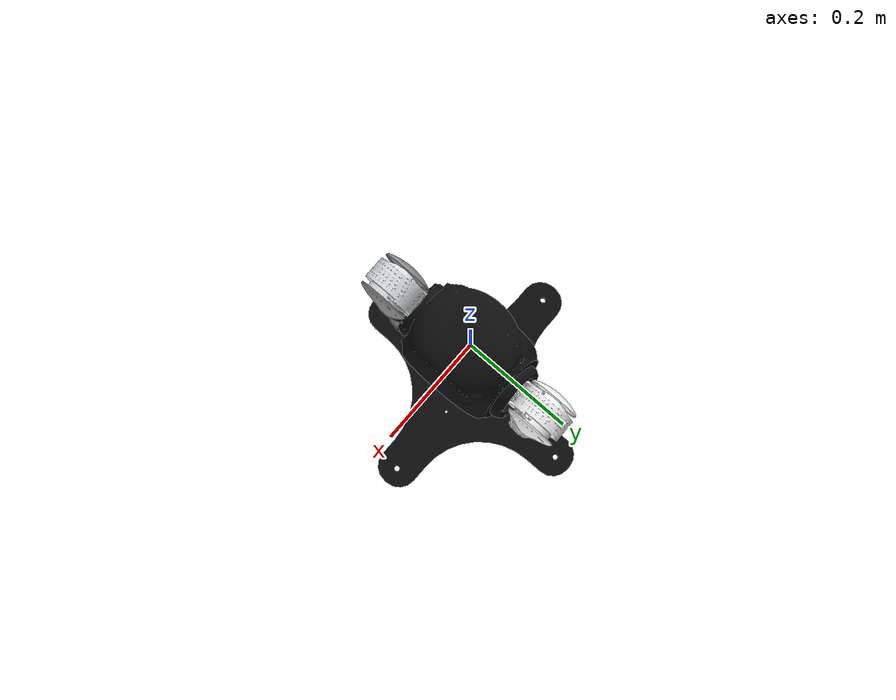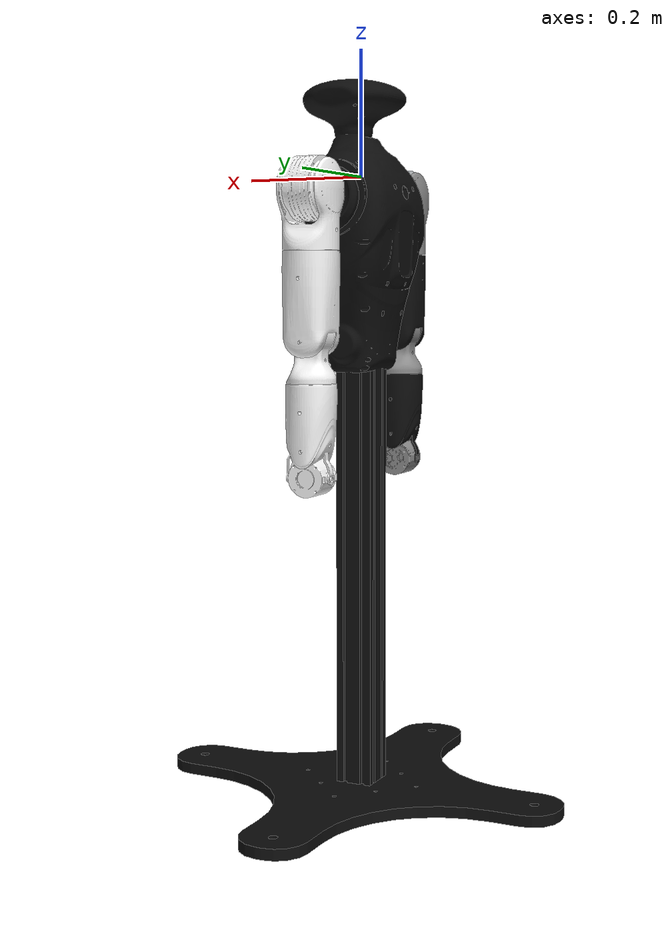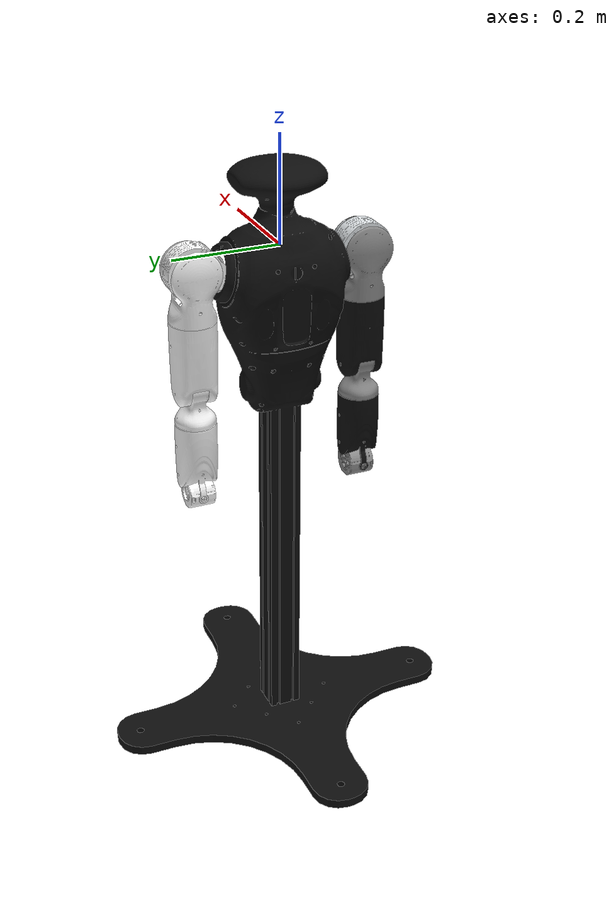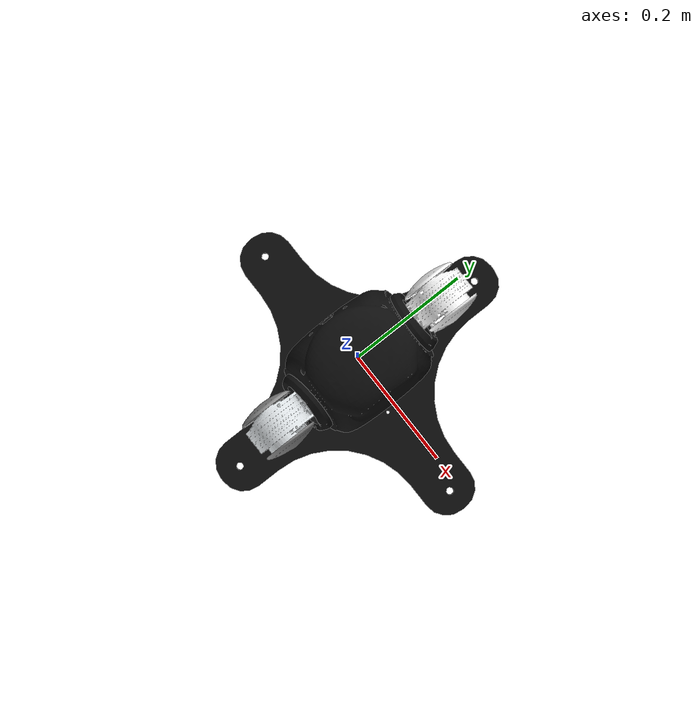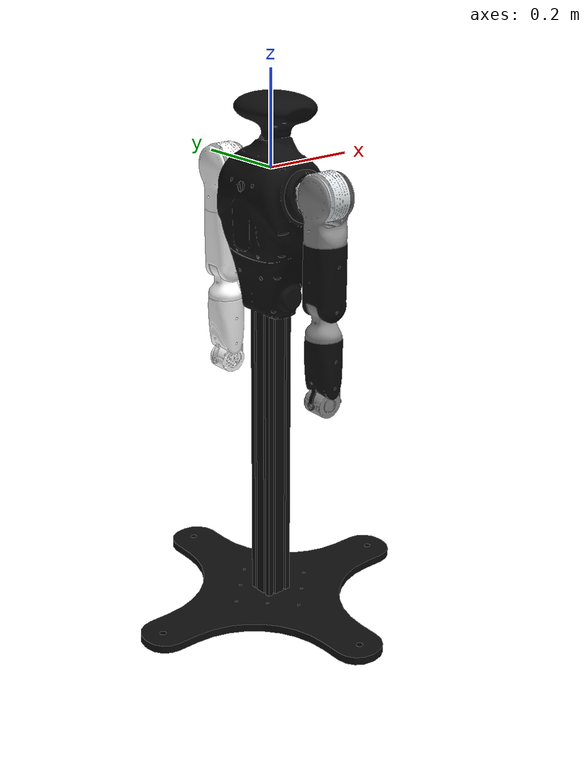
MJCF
<?xml version='1.0' encoding='utf-8'?>
<mujoco model="revoarm_bimanual">
  <compiler angle="radian" />
  <asset>
    <mesh name="base_link" content_type="model/stl" file="../meshes/body/visual/bimanual/base_link.STL" />
    <mesh name="left_arm_link1" content_type="model/stl" file="../meshes/arm/visual/left_arm_link1.STL" />
    <mesh name="left_arm_link2" content_type="model/stl" file="../meshes/arm/visual/left_arm_link2.STL" />
    <mesh name="left_arm_link3" content_type="model/stl" file="../meshes/arm/visual/left_arm_link3.STL" />
    <mesh name="left_arm_link4" content_type="model/stl" file="../meshes/arm/visual/left_arm_link4.STL" />
    <mesh name="left_arm_link5" content_type="model/stl" file="../meshes/arm/visual/left_arm_link5.STL" />
    <mesh name="left_arm_link6" content_type="model/stl" file="../meshes/arm/visual/left_arm_link6.STL" />
    <mesh name="right_arm_link1" content_type="model/stl" file="../meshes/arm/visual/right_arm_link1.STL" />
    <mesh name="right_arm_link2" content_type="model/stl" file="../meshes/arm/visual/right_arm_link2.STL" />
    <mesh name="right_arm_link3" content_type="model/stl" file="../meshes/arm/visual/right_arm_link3.STL" />
    <mesh name="right_arm_link4" content_type="model/stl" file="../meshes/arm/visual/right_arm_link4.STL" />
    <mesh name="right_arm_link5" content_type="model/stl" file="../meshes/arm/visual/right_arm_link5.STL" />
    <mesh name="right_arm_link6" content_type="model/stl" file="../meshes/arm/visual/right_arm_link6.STL" />
  </asset>
  <worldbody>
    <body name="base" pos="0 0 0" euler="0 0 0">
      <joint name="base_free" type="free" />
      <geom type="mesh" rgba="0.054902 0.054902 0.054902 1" mesh="base_link" contype="0" conaffinity="0" group="1" mass="20.9229828634283" />
      <body name="left_arm_link1" pos="0.0055 0.10424 -0.038037" quat="0.996195 0.0871543 0 0">
        <joint name="revoarm_left_joint1" pos="0 0 0" axis="0 1 0" range="-4.1015 0.7854" actuatorfrcrange="-40 40" />
        <geom type="mesh" rgba="1 1 1 1" mesh="left_arm_link1" contype="0" conaffinity="0" group="1" mass="0.99862" />
        <body name="left_arm_link2" pos="0 0.06 0" quat="0.996195 -0.0871543 0 0">
          <joint name="revoarm_left_joint2" pos="0 0 0" axis="1 0 0" range="-0.1745 3.3161" actuatorfrcrange="-40 40" />
          <geom type="mesh" rgba="1 1 1 1" mesh="left_arm_link2" contype="0" conaffinity="0" group="1" mass="0.1942" />
          <body name="left_arm_link3" pos="0 0 -0.099">
            <joint name="revoarm_left_joint3" pos="0 0 0" axis="0 0 -1" range="-3.6652 0.5236" actuatorfrcrange="-27 27" />
            <geom type="mesh" rgba="1 1 1 1" mesh="left_arm_link3" contype="0" conaffinity="0" group="1" mass="0.56897" />
            <body name="left_arm_link4" pos="0 0 -0.121">
              <joint name="revoarm_left_joint4" pos="0 0 0" axis="0 -1 0" range="-0.34907 2.2166" actuatorfrcrange="-27 27" />
              <geom type="mesh" rgba="1 1 1 1" mesh="left_arm_link4" contype="0" conaffinity="0" group="1" mass="0.43039" />
              <body name="left_arm_link5" pos="0 0 -0.0635">
                <joint name="revoarm_left_joint5" pos="0 0 0" axis="0 0 -1" range="-3.1444 0.9044" actuatorfrcrange="-7 7" />
                <geom type="mesh" rgba="1 1 1 1" mesh="left_arm_link5" contype="0" conaffinity="0" group="1" mass="0.80969" />
                <body name="left_arm_link6" pos="0 0 -0.1525">
                  <joint name="revoarm_left_joint6" pos="0 0 0" axis="-1 0 0" range="-0.64577 0.64577" actuatorfrcrange="-7 7" />
                  <geom type="mesh" rgba="1 1 1 1" mesh="left_arm_link6" contype="0" conaffinity="0" group="1" mass="0.31466" />
                  <body name="left_arm_link7" quat="1 -0.0009702 0 0">
                    <inertial pos="0 0 0" mass="1e-06" diaginertia="1e-09 1e-09 1e-09" />
                    <joint name="revoarm_left_joint7" pos="0 0 0" axis="0 -1 0" range="-1.5708 1.5708" actuatorfrcrange="-7 7" />
                  </body>
                </body>
              </body>
            </body>
          </body>
        </body>
      </body>
      <body name="right_arm_link1" pos="0.0055 -0.10424 -0.038037" quat="0.996195 -0.0871543 0 0">
        <joint name="revoarm_right_joint1" pos="0 0 0" axis="0 1 0" range="-4.1015 0.7854" actuatorfrcrange="-40 40" />
        <geom type="mesh" rgba="0.89804 0.91765 0.92941 1" mesh="right_arm_link1" contype="0" conaffinity="0" group="1" mass="0.99862" />
        <body name="right_arm_link2" pos="0 -0.06 0" quat="0.996195 0.0871543 0 0">
          <joint name="revoarm_right_joint2" pos="0 0 0" axis="-1 0 0" range="-0.1745 3.3161" actuatorfrcrange="-40 40" />
          <geom type="mesh" rgba="0.556863 0.556863 0.556863 1" mesh="right_arm_link2" contype="0" conaffinity="0" group="1" mass="0.1942" />
          <body name="right_arm_link3" pos="0 0 -0.099">
            <joint name="revoarm_right_joint3" pos="0 0 0" axis="0 0 1" range="-3.6652 0.5236" actuatorfrcrange="-27 27" />
            <geom type="mesh" rgba="0.054902 0.054902 0.054902 1" mesh="right_arm_link3" contype="0" conaffinity="0" group="1" mass="0.56897" />
            <body name="right_arm_link4" pos="0 0 -0.121">
              <joint name="revoarm_right_joint4" pos="0 0 0" axis="0 -1 0" range="-0.34907 2.2166" actuatorfrcrange="-27 27" />
              <geom type="mesh" rgba="0.556863 0.556863 0.556863 1" mesh="right_arm_link4" contype="0" conaffinity="0" group="1" mass="0.43039" />
              <body name="right_arm_link5" pos="0 0 -0.0635">
                <joint name="revoarm_right_joint5" pos="0 0 0" axis="0 0 1" range="-3.1444 0.9044" actuatorfrcrange="-7 7" />
                <geom type="mesh" rgba="0.054902 0.054902 0.054902 1" mesh="right_arm_link5" contype="0" conaffinity="0" group="1" mass="0.80969" />
                <body name="right_arm_link6" pos="0 0 -0.1525">
                  <joint name="revoarm_right_joint6" pos="0 0 0" axis="1 0 0" range="-0.64577 0.64577" actuatorfrcrange="-7 7" />
                  <geom type="mesh" rgba="0.556863 0.556863 0.556863 1" mesh="right_arm_link6" contype="0" conaffinity="0" group="1" mass="0.31466" />
                  <body name="right_arm_link7" quat="1 0.0009702 0 0">
                    <inertial pos="0 0 0" mass="1e-06" diaginertia="1e-09 1e-09 1e-09" />
                    <joint name="revoarm_right_joint7" pos="0 0 0" axis="0 -1 0" range="-1.5708 1.5708" actuatorfrcrange="-7 7" />
                  </body>
                </body>
              </body>
            </body>
          </body>
        </body>
      </body>
    </body>
  </worldbody>
</mujoco>
